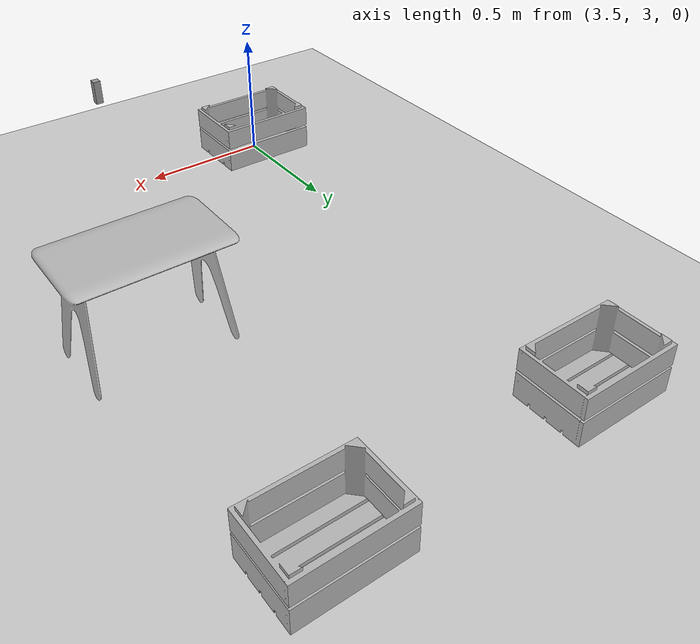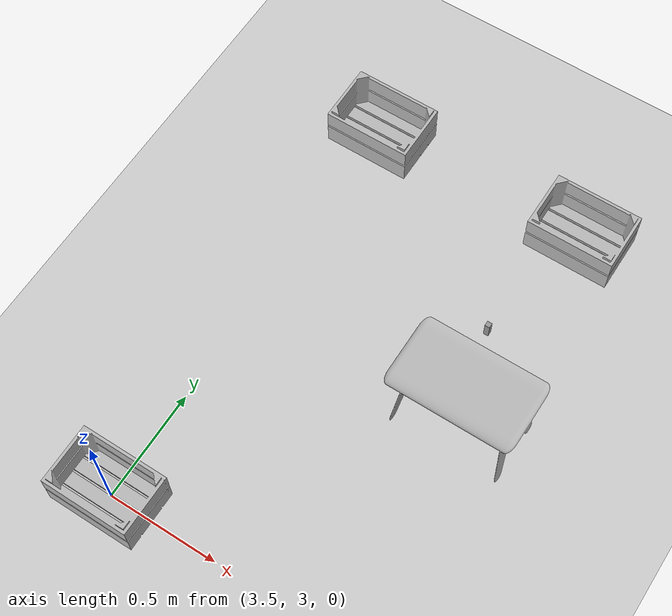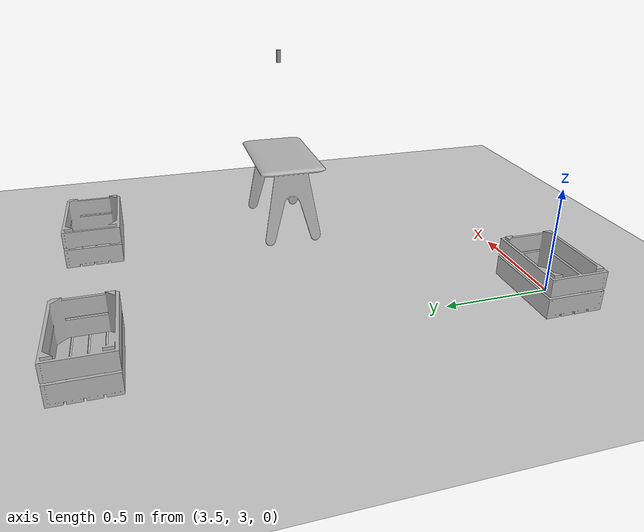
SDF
<sdf version="1.4">
 <world name="default">
  <include><uri>model://ground_plane</uri></include>
  <include><uri>model://sun</uri></include>
  <model name="PickUp_Table">
   <pose>4.5 4 0  0 0 0</pose>
   <static>true</static>
   <link name="table">
    <collision name="collision">
     <geometry><mesh><scale>0.35 0.75 0.9</scale><uri>model://Slab.dae</uri></mesh></geometry>
    </collision>
    <visual name="visual">
     <geometry><mesh><scale>0.35 0.75 0.9</scale><uri>model://Slab.dae</uri></mesh></geometry>
    </visual>
   </link>
  </model>
  <model name="Cube_1">
   <pose>4.54 4 0.9  0 0 0</pose>
   <static>false</static>
   <link name="cube_1">
    <inertial>
     <mass>0.000001</mass>
     <inertia>
      <ixx>0.000001</ixx>
      <ixy>0.0</ixy>
      <ixz>0.0</ixz>
      <iyy>0.000001</iyy>
      <iyz>0.0</iyz>
      <izz>0.000001</izz>
     </inertia>
    </inertial>
    <collision name="collision">
     <geometry><mesh><scale>0.03 0.03 0.1</scale><uri>model://Cube.dae</uri></mesh></geometry>
    </collision>
    <visual name="visual">
     <geometry><mesh><scale>0.03 0.03 0.1</scale><uri>model://Cube.dae</uri></mesh></geometry>
    </visual>
   </link>
   <plugin name="gazebo_ros_phantomx_grasp_hack" filename="libgazebo_ros_phantomx_grasp_hack.so"/>
  </model>
  <model name="Droping_Crates_1">
   <pose>4.5 5 0  0 0 0</pose>
   <static>true</static>
   <link name="crate_1">
    <collision name="collision">
     <geometry><mesh><scale>0.75 0.75 0.75</scale><uri>model://crate_1.dae</uri></mesh></geometry>
    </collision>
    <visual name="visual">
     <geometry><mesh><scale>0.75 0.75 0.75</scale><uri>model://crate_1.dae</uri></mesh></geometry>
    </visual>
   </link>
  </model>
  <model name="Droping_Crates_2">
   <pose>3.5 3 0  0 0 0</pose>
   <static>true</static>
   <link name="crate_2">
    <collision name="collision">
     <geometry><mesh><scale>0.75 0.75 0.75</scale><uri>model://crate_2.dae</uri></mesh></geometry>
    </collision>
    <visual name="visual">
     <geometry><mesh><scale>0.75 0.75 0.75</scale><uri>model://crate_2.dae</uri></mesh></geometry>
    </visual>
   </link>
  </model>
  <model name="Droping_Crates_3">
   <pose>3.5 5 0  0 0 0</pose>
   <static>true</static>
   <link name="crate_3">
    <collision name="collision">
     <geometry><mesh><scale>0.75 0.75 0.75</scale><uri>model://crate_3.dae</uri></mesh></geometry>
    </collision>
    <visual name="visual">
     <geometry><mesh><scale>0.75 0.75 0.75</scale><uri>model://crate_3.dae</uri></mesh></geometry>
    </visual>
   </link>
  </model>
 </world>
</sdf>
